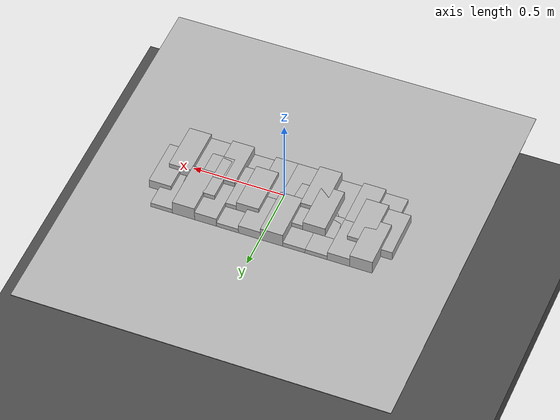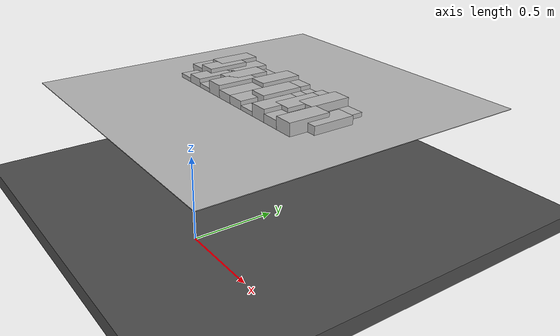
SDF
<sdf version="1.6">
 <world name="default">
  <model name="ground_plane">
   <static>1</static>
   <link name="link">
    <collision name="collision">
     <geometry><plane><normal>0 0 1</normal><size>100 100</size></plane></geometry>
     <surface><friction><ode><mu>100</mu><mu2>50</mu2></ode></friction></surface>
    </collision>
    <visual name="visual">
     <cast_shadows>0</cast_shadows>
     <geometry><plane><normal>0 0 1</normal><size>100 100</size></plane></geometry>
     <material>
      <script><uri>file://media/materials/scripts/gazebo.material</uri><name>Gazebo/Grey</name></script>
     </material>
    </visual>
   </link>
  </model>
  <model name="frc2016_roughterrain_0">
   <link name="link_clone_16">
    <pose>-0.12314 0.594437 -0.073164 0 -0 0</pose>
    <inertial>
     <inertia><ixx>nan</ixx><ixy>0</ixy><ixz>0</ixz><iyy>nan</iyy><iyz>0</iyz><izz>nan</izz></inertia>
     <mass>0</mass>
    </inertial>
    <visual name="row1_block10_lg">
     <pose>-0.51435 0.1143 0.12238 0 -0 0</pose>
     <geometry><box><size>0.115452 0.257474 0.0762</size></box></geometry>
     <material><shader type="pixel"/></material>
    </visual>
    <visual name="row1_block9_md">
     <pose>-0.40005 0.1143 0.10968 0 -0 0</pose>
     <geometry><box><size>0.115452 0.257474 0.0508</size></box></geometry>
     <material><shader type="pixel"/></material>
    </visual>
    <visual name="row2_block1_md">
     <pose>0.5715 0 0.10968 0 -0 0</pose>
     <geometry><box><size>0.115452 0.257474 0.0508</size></box></geometry>
     <material><shader type="pixel"/></material>
    </visual>
    <visual name="row1_block3_md">
     <pose>0.28575 0.1143 0.10968 0 -0 0</pose>
     <geometry><box><size>0.115452 0.257474 0.0508</size></box></geometry>
     <material><shader type="pixel"/></material>
    </visual>
    <visual name="row1_block6_lg">
     <pose>-0.05715 0.1143 0.12238 0 -0 0</pose>
     <geometry><box><size>0.115452 0.257474 0.0762</size></box></geometry>
     <material><shader type="pixel"/></material>
    </visual>
    <visual name="row1_block4_sm">
     <pose>0.17145 0.1143 0.09698 0 -0 0</pose>
     <geometry><box><size>0.115452 0.257474 0.0254</size></box></geometry>
     <material><shader type="pixel"/></material>
    </visual>
    <visual name="row1_block2_lg">
     <pose>0.40005 0.1143 0.12238 0 -0 0</pose>
     <geometry><box><size>0.115452 0.257474 0.0762</size></box></geometry>
     <material><shader type="pixel"/></material>
    </visual>
    <visual name="row1_block5_md">
     <pose>0.05715 0.1143 0.10968 0 -0 0</pose>
     <geometry><box><size>0.115452 0.257474 0.0508</size></box></geometry>
     <material><shader type="pixel"/></material>
    </visual>
    <visual name="platform">
     <pose>0 0 0.08269 0 -0 0</pose>
     <geometry><box><size>1.91826 2.01688 0.003175</size></box></geometry>
     <material><shader type="pixel"/></material>
    </visual>
    <visual name="row1_block1_sm">
     <pose>0.51435 0.1143 0.09698 0 -0 0</pose>
     <geometry><box><size>0.115452 0.257474 0.0254</size></box></geometry>
     <material><shader type="pixel"/></material>
    </visual>
    <visual name="row1_block7_sm">
     <pose>-0.17145 0.1143 0.09698 0 -0 0</pose>
     <geometry><box><size>0.115452 0.257474 0.0254</size></box></geometry>
     <material><shader type="pixel"/></material>
    </visual>
    <visual name="row1_block8_sm">
     <pose>-0.28575 0.1143 0.09698 0 -0 0</pose>
     <geometry><box><size>0.115452 0.257474 0.0254</size></box></geometry>
     <material><shader type="pixel"/></material>
    </visual>
    <visual name="row2_block2_sm">
     <pose>0.4572 0 0.09698 0 -0 0</pose>
     <geometry><box><size>0.115452 0.257474 0.0254</size></box></geometry>
     <material><shader type="pixel"/></material>
    </visual>
    <visual name="row2_block3_lg">
     <pose>0.3429 0 0.12238 0 -0 0</pose>
     <geometry><box><size>0.115452 0.257474 0.0762</size></box></geometry>
     <material><shader type="pixel"/></material>
    </visual>
    <visual name="row2_block4_md">
     <pose>0.2286 0 0.10968 0 -0 0</pose>
     <geometry><box><size>0.115452 0.257474 0.0508</size></box></geometry>
     <material><shader type="pixel"/></material>
    </visual>
    <visual name="row2_block5_lg">
     <pose>0.1143 0 0.12238 0 -0 0</pose>
     <geometry><box><size>0.115452 0.257474 0.0762</size></box></geometry>
     <material><shader type="pixel"/></material>
    </visual>
    <visual name="row2_block6_sm">
     <pose>0 0 0.09698 0 -0 0</pose>
     <geometry><box><size>0.115452 0.257474 0.0254</size></box></geometry>
     <material><shader type="pixel"/></material>
    </visual>
    <visual name="row2_block7_md">
     <pose>-0.1143 0 0.10968 0 -0 0</pose>
     <geometry><box><size>0.115452 0.257474 0.0508</size></box></geometry>
     <material><shader type="pixel"/></material>
    </visual>
    <visual name="row2_block8_lg">
     <pose>-0.2286 0 0.12238 0 -0 0</pose>
     <geometry><box><size>0.115452 0.257474 0.0762</size></box></geometry>
     <material><shader type="pixel"/></material>
    </visual>
    <visual name="row2_block9_sm">
     <pose>-0.3429 0 0.09698 0 -0 0</pose>
     <geometry><box><size>0.115452 0.257474 0.0254</size></box></geometry>
     <material><shader type="pixel"/></material>
    </visual>
    <visual name="row2_block10_lg">
     <pose>-0.4572 0 0.12238 0 -0 0</pose>
     <geometry><box><size>0.115452 0.257474 0.0762</size></box></geometry>
     <material><shader type="pixel"/></material>
    </visual>
    <visual name="row2_block11_md">
     <pose>-0.5715 0 0.10968 0 -0 0</pose>
     <geometry><box><size>0.115452 0.257474 0.0508</size></box></geometry>
     <material><shader type="pixel"/></material>
    </visual>
    <visual name="row3_block2_md">
     <pose>0.40005 -0.1143 0.10968 0 -0 0</pose>
     <geometry><box><size>0.115452 0.257474 0.0508</size></box></geometry>
     <material><shader type="pixel"/></material>
    </visual>
    <visual name="row3_block1_lg">
     <pose>0.51435 -0.1143 0.12238 0 -0 0</pose>
     <geometry><box><size>0.115452 0.257474 0.0762</size></box></geometry>
     <material><shader type="pixel"/></material>
    </visual>
    <visual name="row3_block3_lg">
     <pose>0.28575 -0.1143 0.12238 0 -0 0</pose>
     <geometry><box><size>0.115452 0.257474 0.0762</size></box></geometry>
     <material><shader type="pixel"/></material>
    </visual>
    <visual name="row3_block4_sm">
     <pose>0.17145 -0.1143 0.09698 0 -0 0</pose>
     <geometry><box><size>0.115452 0.257474 0.0254</size></box></geometry>
     <material><shader type="pixel"/></material>
    </visual>
    <visual name="row3_block5_md">
     <pose>0.05715 -0.1143 0.10968 0 -0 0</pose>
     <geometry><box><size>0.115452 0.257474 0.0508</size></box></geometry>
     <material><shader type="pixel"/></material>
    </visual>
    <visual name="row3_block6_md">
     <pose>-0.05715 -0.1143 0.10968 0 -0 0</pose>
     <geometry><box><size>0.115452 0.257474 0.0508</size></box></geometry>
     <material><shader type="pixel"/></material>
    </visual>
    <visual name="row3_block8_sm">
     <pose>-0.28575 -0.1143 0.09698 0 -0 0</pose>
     <geometry><box><size>0.115452 0.257474 0.0254</size></box></geometry>
     <material><shader type="pixel"/></material>
    </visual>
    <visual name="row3_block7_lg">
     <pose>-0.17145 -0.1143 0.12238 0 -0 0</pose>
     <geometry><box><size>0.115452 0.257474 0.0762</size></box></geometry>
     <material><shader type="pixel"/></material>
    </visual>
    <visual name="row3_block9_md">
     <pose>-0.40005 -0.1143 0.10968 0 -0 0</pose>
     <geometry><box><size>0.115452 0.257474 0.0508</size></box></geometry>
     <material><shader type="pixel"/></material>
    </visual>
    <visual name="row3_block10_sm">
     <pose>-0.51435 -0.1143 0.09698 0 -0 0</pose>
     <geometry><box><size>0.115452 0.257474 0.0254</size></box></geometry>
     <material><shader type="pixel"/></material>
    </visual>
    <collision name="row2_block5_lg_0">
     <pose>0.1143 0 0.12238 0 -0 0</pose>
     <geometry><box><size>0.115452 0.257474 0.0762</size></box></geometry>
     <surface>
      <friction>
       <ode><mu>1</mu><mu2>1</mu2><fdir1>0 0 0</fdir1><slip1>0</slip1><slip2>0</slip2></ode>
       <torsional>
        <coefficient>1</coefficient>
        <patch_radius>0</patch_radius>
        <surface_radius>0</surface_radius>
        <use_patch_radius>1</use_patch_radius>
        <ode><slip>0</slip></ode>
       </torsional>
      </friction>
      <bounce><restitution_coefficient>0</restitution_coefficient><threshold>1e+06</threshold></bounce>
      <contact>
       <collide_without_contact>0</collide_without_contact>
       <collide_without_contact_bitmask>1</collide_without_contact_bitmask>
       <collide_bitmask>1</collide_bitmask>
       <ode>
        <soft_cfm>0</soft_cfm>
        <soft_erp>0.2</soft_erp>
        <kp>1e+13</kp>
        <kd>1</kd>
        <max_vel>0.01</max_vel>
        <min_depth>0</min_depth>
       </ode>
       <bullet>
        <split_impulse>1</split_impulse>
        <split_impulse_penetration_threshold>-0.01</split_impulse_penetration_threshold>
        <soft_cfm>0</soft_cfm>
        <soft_erp>0.2</soft_erp>
        <kp>1e+13</kp>
        <kd>1</kd>
       </bullet>
      </contact>
     </surface>
    </collision>
    <collision name="platform_0">
     <pose>0 0 0.08269 0 -0 0</pose>
     <geometry><box><size>1.91826 2.01688 0.003175</size></box></geometry>
     <surface>
      <friction>
       <ode><mu>1</mu><mu2>1</mu2><fdir1>0 0 0</fdir1><slip1>0</slip1><slip2>0</slip2></ode>
       <torsional>
        <coefficient>1</coefficient>
        <patch_radius>0</patch_radius>
        <surface_radius>0</surface_radius>
        <use_patch_radius>1</use_patch_radius>
        <ode><slip>0</slip></ode>
       </torsional>
      </friction>
      <bounce><restitution_coefficient>0</restitution_coefficient><threshold>1e+06</threshold></bounce>
      <contact>
       <collide_without_contact>0</collide_without_contact>
       <collide_without_contact_bitmask>1</collide_without_contact_bitmask>
       <collide_bitmask>1</collide_bitmask>
       <ode>
        <soft_cfm>0</soft_cfm>
        <soft_erp>0.2</soft_erp>
        <kp>1e+13</kp>
        <kd>1</kd>
        <max_vel>0.01</max_vel>
        <min_depth>0</min_depth>
       </ode>
       <bullet>
        <split_impulse>1</split_impulse>
        <split_impulse_penetration_threshold>-0.01</split_impulse_penetration_threshold>
        <soft_cfm>0</soft_cfm>
        <soft_erp>0.2</soft_erp>
        <kp>1e+13</kp>
        <kd>1</kd>
       </bullet>
      </contact>
     </surface>
    </collision>
    <collision name="row1_block1_sm_0">
     <pose>0.51435 0.1143 0.09698 0 -0 0</pose>
     <geometry><box><size>0.115452 0.257474 0.0254</size></box></geometry>
     <surface>
      <friction>
       <ode><mu>1</mu><mu2>1</mu2><fdir1>0 0 0</fdir1><slip1>0</slip1><slip2>0</slip2></ode>
       <torsional>
        <coefficient>1</coefficient>
        <patch_radius>0</patch_radius>
        <surface_radius>0</surface_radius>
        <use_patch_radius>1</use_patch_radius>
        <ode><slip>0</slip></ode>
       </torsional>
      </friction>
      <bounce><restitution_coefficient>0</restitution_coefficient><threshold>1e+06</threshold></bounce>
      <contact>
       <collide_without_contact>0</collide_without_contact>
       <collide_without_contact_bitmask>1</collide_without_contact_bitmask>
       <collide_bitmask>1</collide_bitmask>
       <ode>
        <soft_cfm>0</soft_cfm>
        <soft_erp>0.2</soft_erp>
        <kp>1e+13</kp>
        <kd>1</kd>
        <max_vel>0.01</max_vel>
        <min_depth>0</min_depth>
       </ode>
       <bullet>
        <split_impulse>1</split_impulse>
        <split_impulse_penetration_threshold>-0.01</split_impulse_penetration_threshold>
        <soft_cfm>0</soft_cfm>
        <soft_erp>0.2</soft_erp>
        <kp>1e+13</kp>
        <kd>1</kd>
       </bullet>
      </contact>
     </surface>
    </collision>
    <collision name="row1_block3_md_0">
     <pose>0.28575 0.1143 0.10968 0 -0 0</pose>
     <geometry><box><size>0.115452 0.257474 0.0508</size></box></geometry>
     <surface>
      <friction>
       <ode><mu>1</mu><mu2>1</mu2><fdir1>0 0 0</fdir1><slip1>0</slip1><slip2>0</slip2></ode>
       <torsional>
        <coefficient>1</coefficient>
        <patch_radius>0</patch_radius>
        <surface_radius>0</surface_radius>
        <use_patch_radius>1</use_patch_radius>
        <ode><slip>0</slip></ode>
       </torsional>
      </friction>
      <bounce><restitution_coefficient>0</restitution_coefficient><threshold>1e+06</threshold></bounce>
      <contact>
       <collide_without_contact>0</collide_without_contact>
       <collide_without_contact_bitmask>1</collide_without_contact_bitmask>
       <collide_bitmask>1</collide_bitmask>
       <ode>
        <soft_cfm>0</soft_cfm>
        <soft_erp>0.2</soft_erp>
        <kp>1e+13</kp>
        <kd>1</kd>
        <max_vel>0.01</max_vel>
        <min_depth>0</min_depth>
       </ode>
       <bullet>
        <split_impulse>1</split_impulse>
        <split_impulse_penetration_threshold>-0.01</split_impulse_penetration_threshold>
        <soft_cfm>0</soft_cfm>
        <soft_erp>0.2</soft_erp>
        <kp>1e+13</kp>
        <kd>1</kd>
       </bullet>
      </contact>
     </surface>
    </collision>
    <collision name="row1_block2_lg_0">
     <pose>0.40005 0.1143 0.12238 0 -0 0</pose>
     <geometry><box><size>0.115452 0.257474 0.0762</size></box></geometry>
     <surface>
      <friction>
       <ode><mu>1</mu><mu2>1</mu2><fdir1>0 0 0</fdir1><slip1>0</slip1><slip2>0</slip2></ode>
       <torsional>
        <coefficient>1</coefficient>
        <patch_radius>0</patch_radius>
        <surface_radius>0</surface_radius>
        <use_patch_radius>1</use_patch_radius>
        <ode><slip>0</slip></ode>
       </torsional>
      </friction>
      <bounce><restitution_coefficient>0</restitution_coefficient><threshold>1e+06</threshold></bounce>
      <contact>
       <collide_without_contact>0</collide_without_contact>
       <collide_without_contact_bitmask>1</collide_without_contact_bitmask>
       <collide_bitmask>1</collide_bitmask>
       <ode>
        <soft_cfm>0</soft_cfm>
        <soft_erp>0.2</soft_erp>
        <kp>1e+13</kp>
        <kd>1</kd>
        <max_vel>0.01</max_vel>
        <min_depth>0</min_depth>
       </ode>
       <bullet>
        <split_impulse>1</split_impulse>
        <split_impulse_penetration_threshold>-0.01</split_impulse_penetration_threshold>
        <soft_cfm>0</soft_cfm>
        <soft_erp>0.2</soft_erp>
        <kp>1e+13</kp>
        <kd>1</kd>
       </bullet>
      </contact>
     </surface>
    </collision>
    <collision name="row1_block4_sm_0">
     <pose>0.17145 0.1143 0.09698 0 -0 0</pose>
     <geometry><box><size>0.115452 0.257474 0.0254</size></box></geometry>
     <surface>
      <friction>
       <ode><mu>1</mu><mu2>1</mu2><fdir1>0 0 0</fdir1><slip1>0</slip1><slip2>0</slip2></ode>
       <torsional>
        <coefficient>1</coefficient>
        <patch_radius>0</patch_radius>
        <surface_radius>0</surface_radius>
        <use_patch_radius>1</use_patch_radius>
        <ode><slip>0</slip></ode>
       </torsional>
      </friction>
      <bounce><restitution_coefficient>0</restitution_coefficient><threshold>1e+06</threshold></bounce>
      <contact>
       <collide_without_contact>0</collide_without_contact>
       <collide_without_contact_bitmask>1</collide_without_contact_bitmask>
       <collide_bitmask>1</collide_bitmask>
       <ode>
        <soft_cfm>0</soft_cfm>
        <soft_erp>0.2</soft_erp>
        <kp>1e+13</kp>
        <kd>1</kd>
        <max_vel>0.01</max_vel>
        <min_depth>0</min_depth>
       </ode>
       <bullet>
        <split_impulse>1</split_impulse>
        <split_impulse_penetration_threshold>-0.01</split_impulse_penetration_threshold>
        <soft_cfm>0</soft_cfm>
        <soft_erp>0.2</soft_erp>
        <kp>1e+13</kp>
        <kd>1</kd>
       </bullet>
      </contact>
     </surface>
    </collision>
    <collision name="row1_block6_lg_0">
     <pose>-0.05715 0.1143 0.12238 0 -0 0</pose>
     <geometry><box><size>0.115452 0.257474 0.0762</size></box></geometry>
     <surface>
      <friction>
       <ode><mu>1</mu><mu2>1</mu2><fdir1>0 0 0</fdir1><slip1>0</slip1><slip2>0</slip2></ode>
       <torsional>
        <coefficient>1</coefficient>
        <patch_radius>0</patch_radius>
        <surface_radius>0</surface_radius>
        <use_patch_radius>1</use_patch_radius>
        <ode><slip>0</slip></ode>
       </torsional>
      </friction>
      <bounce><restitution_coefficient>0</restitution_coefficient><threshold>1e+06</threshold></bounce>
      <contact>
       <collide_without_contact>0</collide_without_contact>
       <collide_without_contact_bitmask>1</collide_without_contact_bitmask>
       <collide_bitmask>1</collide_bitmask>
       <ode>
        <soft_cfm>0</soft_cfm>
        <soft_erp>0.2</soft_erp>
        <kp>1e+13</kp>
        <kd>1</kd>
        <max_vel>0.01</max_vel>
        <min_depth>0</min_depth>
       </ode>
       <bullet>
        <split_impulse>1</split_impulse>
        <split_impulse_penetration_threshold>-0.01</split_impulse_penetration_threshold>
        <soft_cfm>0</soft_cfm>
        <soft_erp>0.2</soft_erp>
        <kp>1e+13</kp>
        <kd>1</kd>
       </bullet>
      </contact>
     </surface>
    </collision>
    <collision name="row1_block5_md_0">
     <pose>0.05715 0.1143 0.10968 0 -0 0</pose>
     <geometry><box><size>0.115452 0.257474 0.0508</size></box></geometry>
     <surface>
      <friction>
       <ode><mu>1</mu><mu2>1</mu2><fdir1>0 0 0</fdir1><slip1>0</slip1><slip2>0</slip2></ode>
       <torsional>
        <coefficient>1</coefficient>
        <patch_radius>0</patch_radius>
        <surface_radius>0</surface_radius>
        <use_patch_radius>1</use_patch_radius>
        <ode><slip>0</slip></ode>
       </torsional>
      </friction>
      <bounce><restitution_coefficient>0</restitution_coefficient><threshold>1e+06</threshold></bounce>
      <contact>
       <collide_without_contact>0</collide_without_contact>
       <collide_without_contact_bitmask>1</collide_without_contact_bitmask>
       <collide_bitmask>1</collide_bitmask>
       <ode>
        <soft_cfm>0</soft_cfm>
        <soft_erp>0.2</soft_erp>
        <kp>1e+13</kp>
        <kd>1</kd>
        <max_vel>0.01</max_vel>
        <min_depth>0</min_depth>
       </ode>
       <bullet>
        <split_impulse>1</split_impulse>
        <split_impulse_penetration_threshold>-0.01</split_impulse_penetration_threshold>
        <soft_cfm>0</soft_cfm>
        <soft_erp>0.2</soft_erp>
        <kp>1e+13</kp>
        <kd>1</kd>
       </bullet>
      </contact>
     </surface>
    </collision>
    <collision name="row1_block7_sm_0">
     <pose>-0.17145 0.1143 0.09698 0 -0 0</pose>
     <geometry><box><size>0.115452 0.257474 0.0254</size></box></geometry>
     <surface>
      <friction>
       <ode><mu>1</mu><mu2>1</mu2><fdir1>0 0 0</fdir1><slip1>0</slip1><slip2>0</slip2></ode>
       <torsional>
        <coefficient>1</coefficient>
        <patch_radius>0</patch_radius>
        <surface_radius>0</surface_radius>
        <use_patch_radius>1</use_patch_radius>
        <ode><slip>0</slip></ode>
       </torsional>
      </friction>
      <bounce><restitution_coefficient>0</restitution_coefficient><threshold>1e+06</threshold></bounce>
      <contact>
       <collide_without_contact>0</collide_without_contact>
       <collide_without_contact_bitmask>1</collide_without_contact_bitmask>
       <collide_bitmask>1</collide_bitmask>
       <ode>
        <soft_cfm>0</soft_cfm>
        <soft_erp>0.2</soft_erp>
        <kp>1e+13</kp>
        <kd>1</kd>
        <max_vel>0.01</max_vel>
        <min_depth>0</min_depth>
       </ode>
       <bullet>
        <split_impulse>1</split_impulse>
        <split_impulse_penetration_threshold>-0.01</split_impulse_penetration_threshold>
        <soft_cfm>0</soft_cfm>
        <soft_erp>0.2</soft_erp>
        <kp>1e+13</kp>
        <kd>1</kd>
       </bullet>
      </contact>
     </surface>
    </collision>
    <collision name="row1_block10_lg_0">
     <pose>-0.51435 0.1143 0.12238 0 -0 0</pose>
     <geometry><box><size>0.115452 0.257474 0.0762</size></box></geometry>
     <surface>
      <friction>
       <ode><mu>1</mu><mu2>1</mu2><fdir1>0 0 0</fdir1><slip1>0</slip1><slip2>0</slip2></ode>
       <torsional>
        <coefficient>1</coefficient>
        <patch_radius>0</patch_radius>
        <surface_radius>0</surface_radius>
        <use_patch_radius>1</use_patch_radius>
        <ode><slip>0</slip></ode>
       </torsional>
      </friction>
      <bounce><restitution_coefficient>0</restitution_coefficient><threshold>1e+06</threshold></bounce>
      <contact>
       <collide_without_contact>0</collide_without_contact>
       <collide_without_contact_bitmask>1</collide_without_contact_bitmask>
       <collide_bitmask>1</collide_bitmask>
       <ode>
        <soft_cfm>0</soft_cfm>
        <soft_erp>0.2</soft_erp>
        <kp>1e+13</kp>
        <kd>1</kd>
        <max_vel>0.01</max_vel>
        <min_depth>0</min_depth>
       </ode>
       <bullet>
        <split_impulse>1</split_impulse>
        <split_impulse_penetration_threshold>-0.01</split_impulse_penetration_threshold>
        <soft_cfm>0</soft_cfm>
        <soft_erp>0.2</soft_erp>
        <kp>1e+13</kp>
        <kd>1</kd>
       </bullet>
      </contact>
     </surface>
    </collision>
    <collision name="row1_block9_md_0">
     <pose>-0.40005 0.1143 0.10968 0 -0 0</pose>
     <geometry><box><size>0.115452 0.257474 0.0508</size></box></geometry>
     <surface>
      <friction>
       <ode><mu>1</mu><mu2>1</mu2><fdir1>0 0 0</fdir1><slip1>0</slip1><slip2>0</slip2></ode>
       <torsional>
        <coefficient>1</coefficient>
        <patch_radius>0</patch_radius>
        <surface_radius>0</surface_radius>
        <use_patch_radius>1</use_patch_radius>
        <ode><slip>0</slip></ode>
       </torsional>
      </friction>
      <bounce><restitution_coefficient>0</restitution_coefficient><threshold>1e+06</threshold></bounce>
      <contact>
       <collide_without_contact>0</collide_without_contact>
       <collide_without_contact_bitmask>1</collide_without_contact_bitmask>
       <collide_bitmask>1</collide_bitmask>
       <ode>
        <soft_cfm>0</soft_cfm>
        <soft_erp>0.2</soft_erp>
        <kp>1e+13</kp>
        <kd>1</kd>
        <max_vel>0.01</max_vel>
        <min_depth>0</min_depth>
       </ode>
       <bullet>
        <split_impulse>1</split_impulse>
        <split_impulse_penetration_threshold>-0.01</split_impulse_penetration_threshold>
        <soft_cfm>0</soft_cfm>
        <soft_erp>0.2</soft_erp>
        <kp>1e+13</kp>
        <kd>1</kd>
       </bullet>
      </contact>
     </surface>
    </collision>
    <collision name="row1_block8_sm_0">
     <pose>-0.28575 0.1143 0.09698 0 -0 0</pose>
     <geometry><box><size>0.115452 0.257474 0.0254</size></box></geometry>
     <surface>
      <friction>
       <ode><mu>1</mu><mu2>1</mu2><fdir1>0 0 0</fdir1><slip1>0</slip1><slip2>0</slip2></ode>
       <torsional>
        <coefficient>1</coefficient>
        <patch_radius>0</patch_radius>
        <surface_radius>0</surface_radius>
        <use_patch_radius>1</use_patch_radius>
        <ode><slip>0</slip></ode>
       </torsional>
      </friction>
      <bounce><restitution_coefficient>0</restitution_coefficient><threshold>1e+06</threshold></bounce>
      <contact>
       <collide_without_contact>0</collide_without_contact>
       <collide_without_contact_bitmask>1</collide_without_contact_bitmask>
       <collide_bitmask>1</collide_bitmask>
       <ode>
        <soft_cfm>0</soft_cfm>
        <soft_erp>0.2</soft_erp>
        <kp>1e+13</kp>
        <kd>1</kd>
        <max_vel>0.01</max_vel>
        <min_depth>0</min_depth>
       </ode>
       <bullet>
        <split_impulse>1</split_impulse>
        <split_impulse_penetration_threshold>-0.01</split_impulse_penetration_threshold>
        <soft_cfm>0</soft_cfm>
        <soft_erp>0.2</soft_erp>
        <kp>1e+13</kp>
        <kd>1</kd>
       </bullet>
      </contact>
     </surface>
    </collision>
    <collision name="row2_block1_md_0">
     <pose>0.5715 0 0.10968 0 -0 0</pose>
     <geometry><box><size>0.115452 0.257474 0.0508</size></box></geometry>
     <surface>
      <friction>
       <ode><mu>1</mu><mu2>1</mu2><fdir1>0 0 0</fdir1><slip1>0</slip1><slip2>0</slip2></ode>
       <torsional>
        <coefficient>1</coefficient>
        <patch_radius>0</patch_radius>
        <surface_radius>0</surface_radius>
        <use_patch_radius>1</use_patch_radius>
        <ode><slip>0</slip></ode>
       </torsional>
      </friction>
      <bounce><restitution_coefficient>0</restitution_coefficient><threshold>1e+06</threshold></bounce>
      <contact>
       <collide_without_contact>0</collide_without_contact>
       <collide_without_contact_bitmask>1</collide_without_contact_bitmask>
       <collide_bitmask>1</collide_bitmask>
       <ode>
        <soft_cfm>0</soft_cfm>
        <soft_erp>0.2</soft_erp>
        <kp>1e+13</kp>
        <kd>1</kd>
        <max_vel>0.01</max_vel>
        <min_depth>0</min_depth>
       </ode>
       <bullet>
        <split_impulse>1</split_impulse>
        <split_impulse_penetration_threshold>-0.01</split_impulse_penetration_threshold>
        <soft_cfm>0</soft_cfm>
        <soft_erp>0.2</soft_erp>
        <kp>1e+13</kp>
        <kd>1</kd>
       </bullet>
      </contact>
     </surface>
    </collision>
    <collision name="row2_block2_sm_0">
     <pose>0.4572 0 0.09698 0 -0 0</pose>
     <geometry><box><size>0.115452 0.257474 0.0254</size></box></geometry>
     <surface>
      <friction>
       <ode><mu>1</mu><mu2>1</mu2><fdir1>0 0 0</fdir1><slip1>0</slip1><slip2>0</slip2></ode>
       <torsional>
        <coefficient>1</coefficient>
        <patch_radius>0</patch_radius>
        <surface_radius>0</surface_radius>
        <use_patch_radius>1</use_patch_radius>
        <ode><slip>0</slip></ode>
       </torsional>
      </friction>
      <bounce><restitution_coefficient>0</restitution_coefficient><threshold>1e+06</threshold></bounce>
      <contact>
       <collide_without_contact>0</collide_without_contact>
       <collide_without_contact_bitmask>1</collide_without_contact_bitmask>
       <collide_bitmask>1</collide_bitmask>
       <ode>
        <soft_cfm>0</soft_cfm>
        <soft_erp>0.2</soft_erp>
        <kp>1e+13</kp>
        <kd>1</kd>
        <max_vel>0.01</max_vel>
        <min_depth>0</min_depth>
       </ode>
       <bullet>
        <split_impulse>1</split_impulse>
        <split_impulse_penetration_threshold>-0.01</split_impulse_penetration_threshold>
        <soft_cfm>0</soft_cfm>
        <soft_erp>0.2</soft_erp>
        <kp>1e+13</kp>
        <kd>1</kd>
       </bullet>
      </contact>
     </surface>
    </collision>
    <collision name="row2_block4_md_0">
     <pose>0.2286 0 0.10968 0 -0 0</pose>
     <geometry><box><size>0.115452 0.257474 0.0508</size></box></geometry>
     <surface>
      <friction>
       <ode><mu>1</mu><mu2>1</mu2><fdir1>0 0 0</fdir1><slip1>0</slip1><slip2>0</slip2></ode>
       <torsional>
        <coefficient>1</coefficient>
        <patch_radius>0</patch_radius>
        <surface_radius>0</surface_radius>
        <use_patch_radius>1</use_patch_radius>
        <ode><slip>0</slip></ode>
       </torsional>
      </friction>
      <bounce><restitution_coefficient>0</restitution_coefficient><threshold>1e+06</threshold></bounce>
      <contact>
       <collide_without_contact>0</collide_without_contact>
       <collide_without_contact_bitmask>1</collide_without_contact_bitmask>
       <collide_bitmask>1</collide_bitmask>
       <ode>
        <soft_cfm>0</soft_cfm>
        <soft_erp>0.2</soft_erp>
        <kp>1e+13</kp>
        <kd>1</kd>
        <max_vel>0.01</max_vel>
        <min_depth>0</min_depth>
       </ode>
       <bullet>
        <split_impulse>1</split_impulse>
        <split_impulse_penetration_threshold>-0.01</split_impulse_penetration_threshold>
        <soft_cfm>0</soft_cfm>
        <soft_erp>0.2</soft_erp>
        <kp>1e+13</kp>
        <kd>1</kd>
       </bullet>
      </contact>
     </surface>
    </collision>
    <collision name="row2_block3_lg_0">
     <pose>0.3429 0 0.12238 0 -0 0</pose>
     <geometry><box><size>0.115452 0.257474 0.0762</size></box></geometry>
     <surface>
      <friction>
       <ode><mu>1</mu><mu2>1</mu2><fdir1>0 0 0</fdir1><slip1>0</slip1><slip2>0</slip2></ode>
       <torsional>
        <coefficient>1</coefficient>
        <patch_radius>0</patch_radius>
        <surface_radius>0</surface_radius>
        <use_patch_radius>1</use_patch_radius>
        <ode><slip>0</slip></ode>
       </torsional>
      </friction>
      <bounce><restitution_coefficient>0</restitution_coefficient><threshold>1e+06</threshold></bounce>
      <contact>
       <collide_without_contact>0</collide_without_contact>
       <collide_without_contact_bitmask>1</collide_without_contact_bitmask>
       <collide_bitmask>1</collide_bitmask>
       <ode>
        <soft_cfm>0</soft_cfm>
        <soft_erp>0.2</soft_erp>
        <kp>1e+13</kp>
        <kd>1</kd>
        <max_vel>0.01</max_vel>
        <min_depth>0</min_depth>
       </ode>
       <bullet>
        <split_impulse>1</split_impulse>
        <split_impulse_penetration_threshold>-0.01</split_impulse_penetration_threshold>
        <soft_cfm>0</soft_cfm>
        <soft_erp>0.2</soft_erp>
        <kp>1e+13</kp>
        <kd>1</kd>
       </bullet>
      </contact>
     </surface>
    </collision>
    <collision name="row2_block6_sm_0">
     <pose>0 0 0.09698 0 -0 0</pose>
     <geometry><box><size>0.115452 0.257474 0.0254</size></box></geometry>
     <surface>
      <friction>
       <ode><mu>1</mu><mu2>1</mu2><fdir1>0 0 0</fdir1><slip1>0</slip1><slip2>0</slip2></ode>
       <torsional>
        <coefficient>1</coefficient>
        <patch_radius>0</patch_radius>
        <surface_radius>0</surface_radius>
        <use_patch_radius>1</use_patch_radius>
        <ode><slip>0</slip></ode>
       </torsional>
      </friction>
      <bounce><restitution_coefficient>0</restitution_coefficient><threshold>1e+06</threshold></bounce>
      <contact>
       <collide_without_contact>0</collide_without_contact>
       <collide_without_contact_bitmask>1</collide_without_contact_bitmask>
       <collide_bitmask>1</collide_bitmask>
       <ode>
        <soft_cfm>0</soft_cfm>
        <soft_erp>0.2</soft_erp>
        <kp>1e+13</kp>
        <kd>1</kd>
        <max_vel>0.01</max_vel>
        <min_depth>0</min_depth>
       </ode>
       <bullet>
        <split_impulse>1</split_impulse>
        <split_impulse_penetration_threshold>-0.01</split_impulse_penetration_threshold>
        <soft_cfm>0</soft_cfm>
        <soft_erp>0.2</soft_erp>
        <kp>1e+13</kp>
        <kd>1</kd>
       </bullet>
      </contact>
     </surface>
    </collision>
    <collision name="row2_block8_lg_0">
     <pose>-0.2286 0 0.12238 0 -0 0</pose>
     <geometry><box><size>0.115452 0.257474 0.0762</size></box></geometry>
     <surface>
      <friction>
       <ode><mu>1</mu><mu2>1</mu2><fdir1>0 0 0</fdir1><slip1>0</slip1><slip2>0</slip2></ode>
       <torsional>
        <coefficient>1</coefficient>
        <patch_radius>0</patch_radius>
        <surface_radius>0</surface_radius>
        <use_patch_radius>1</use_patch_radius>
        <ode><slip>0</slip></ode>
       </torsional>
      </friction>
      <bounce><restitution_coefficient>0</restitution_coefficient><threshold>1e+06</threshold></bounce>
      <contact>
       <collide_without_contact>0</collide_without_contact>
       <collide_without_contact_bitmask>1</collide_without_contact_bitmask>
       <collide_bitmask>1</collide_bitmask>
       <ode>
        <soft_cfm>0</soft_cfm>
        <soft_erp>0.2</soft_erp>
        <kp>1e+13</kp>
        <kd>1</kd>
        <max_vel>0.01</max_vel>
        <min_depth>0</min_depth>
       </ode>
       <bullet>
        <split_impulse>1</split_impulse>
        <split_impulse_penetration_threshold>-0.01</split_impulse_penetration_threshold>
        <soft_cfm>0</soft_cfm>
        <soft_erp>0.2</soft_erp>
        <kp>1e+13</kp>
        <kd>1</kd>
       </bullet>
      </contact>
     </surface>
    </collision>
    <collision name="row2_block10_lg_0">
     <pose>-0.4572 0 0.12238 0 -0 0</pose>
     <geometry><box><size>0.115452 0.257474 0.0762</size></box></geometry>
     <surface>
      <friction>
       <ode><mu>1</mu><mu2>1</mu2><fdir1>0 0 0</fdir1><slip1>0</slip1><slip2>0</slip2></ode>
       <torsional>
        <coefficient>1</coefficient>
        <patch_radius>0</patch_radius>
        <surface_radius>0</surface_radius>
        <use_patch_radius>1</use_patch_radius>
        <ode><slip>0</slip></ode>
       </torsional>
      </friction>
      <bounce><restitution_coefficient>0</restitution_coefficient><threshold>1e+06</threshold></bounce>
      <contact>
       <collide_without_contact>0</collide_without_contact>
       <collide_without_contact_bitmask>1</collide_without_contact_bitmask>
       <collide_bitmask>1</collide_bitmask>
       <ode>
        <soft_cfm>0</soft_cfm>
        <soft_erp>0.2</soft_erp>
        <kp>1e+13</kp>
        <kd>1</kd>
        <max_vel>0.01</max_vel>
        <min_depth>0</min_depth>
       </ode>
       <bullet>
        <split_impulse>1</split_impulse>
        <split_impulse_penetration_threshold>-0.01</split_impulse_penetration_threshold>
        <soft_cfm>0</soft_cfm>
        <soft_erp>0.2</soft_erp>
        <kp>1e+13</kp>
        <kd>1</kd>
       </bullet>
      </contact>
     </surface>
    </collision>
    <collision name="row2_block7_md_0">
     <pose>-0.1143 0 0.10968 0 -0 0</pose>
     <geometry><box><size>0.115452 0.257474 0.0508</size></box></geometry>
     <surface>
      <friction>
       <ode><mu>1</mu><mu2>1</mu2><fdir1>0 0 0</fdir1><slip1>0</slip1><slip2>0</slip2></ode>
       <torsional>
        <coefficient>1</coefficient>
        <patch_radius>0</patch_radius>
        <surface_radius>0</surface_radius>
        <use_patch_radius>1</use_patch_radius>
        <ode><slip>0</slip></ode>
       </torsional>
      </friction>
      <bounce><restitution_coefficient>0</restitution_coefficient><threshold>1e+06</threshold></bounce>
      <contact>
       <collide_without_contact>0</collide_without_contact>
       <collide_without_contact_bitmask>1</collide_without_contact_bitmask>
       <collide_bitmask>1</collide_bitmask>
       <ode>
        <soft_cfm>0</soft_cfm>
        <soft_erp>0.2</soft_erp>
        <kp>1e+13</kp>
        <kd>1</kd>
        <max_vel>0.01</max_vel>
        <min_depth>0</min_depth>
       </ode>
       <bullet>
        <split_impulse>1</split_impulse>
        <split_impulse_penetration_threshold>-0.01</split_impulse_penetration_threshold>
        <soft_cfm>0</soft_cfm>
        <soft_erp>0.2</soft_erp>
        <kp>1e+13</kp>
        <kd>1</kd>
       </bullet>
      </contact>
     </surface>
    </collision>
    <collision name="row2_block11_md_0">
     <pose>-0.5715 0 0.10968 0 -0 0</pose>
     <geometry><box><size>0.115452 0.257474 0.0508</size></box></geometry>
     <surface>
      <friction>
       <ode><mu>1</mu><mu2>1</mu2><fdir1>0 0 0</fdir1><slip1>0</slip1><slip2>0</slip2></ode>
       <torsional>
        <coefficient>1</coefficient>
        <patch_radius>0</patch_radius>
        <surface_radius>0</surface_radius>
        <use_patch_radius>1</use_patch_radius>
        <ode><slip>0</slip></ode>
       </torsional>
      </friction>
      <bounce><restitution_coefficient>0</restitution_coefficient><threshold>1e+06</threshold></bounce>
      <contact>
       <collide_without_contact>0</collide_without_contact>
       <collide_without_contact_bitmask>1</collide_without_contact_bitmask>
       <collide_bitmask>1</collide_bitmask>
       <ode>
        <soft_cfm>0</soft_cfm>
        <soft_erp>0.2</soft_erp>
        <kp>1e+13</kp>
        <kd>1</kd>
        <max_vel>0.01</max_vel>
        <min_depth>0</min_depth>
       </ode>
       <bullet>
        <split_impulse>1</split_impulse>
        <split_impulse_penetration_threshold>-0.01</split_impulse_penetration_threshold>
        <soft_cfm>0</soft_cfm>
        <soft_erp>0.2</soft_erp>
        <kp>1e+13</kp>
        <kd>1</kd>
       </bullet>
      </contact>
     </surface>
    </collision>
    <collision name="row2_block9_sm_0">
     <pose>-0.3429 0 0.09698 0 -0 0</pose>
     <geometry><box><size>0.115452 0.257474 0.0254</size></box></geometry>
     <surface>
      <friction>
       <ode><mu>1</mu><mu2>1</mu2><fdir1>0 0 0</fdir1><slip1>0</slip1><slip2>0</slip2></ode>
       <torsional>
        <coefficient>1</coefficient>
        <patch_radius>0</patch_radius>
        <surface_radius>0</surface_radius>
        <use_patch_radius>1</use_patch_radius>
        <ode><slip>0</slip></ode>
       </torsional>
      </friction>
      <bounce><restitution_coefficient>0</restitution_coefficient><threshold>1e+06</threshold></bounce>
      <contact>
       <collide_without_contact>0</collide_without_contact>
       <collide_without_contact_bitmask>1</collide_without_contact_bitmask>
       <collide_bitmask>1</collide_bitmask>
       <ode>
        <soft_cfm>0</soft_cfm>
        <soft_erp>0.2</soft_erp>
        <kp>1e+13</kp>
        <kd>1</kd>
        <max_vel>0.01</max_vel>
        <min_depth>0</min_depth>
       </ode>
       <bullet>
        <split_impulse>1</split_impulse>
        <split_impulse_penetration_threshold>-0.01</split_impulse_penetration_threshold>
        <soft_cfm>0</soft_cfm>
        <soft_erp>0.2</soft_erp>
        <kp>1e+13</kp>
        <kd>1</kd>
       </bullet>
      </contact>
     </surface>
    </collision>
    <collision name="row3_block2_md_0">
     <pose>0.40005 -0.1143 0.10968 0 -0 0</pose>
     <geometry><box><size>0.115452 0.257474 0.0508</size></box></geometry>
     <surface>
      <friction>
       <ode><mu>1</mu><mu2>1</mu2><fdir1>0 0 0</fdir1><slip1>0</slip1><slip2>0</slip2></ode>
       <torsional>
        <coefficient>1</coefficient>
        <patch_radius>0</patch_radius>
        <surface_radius>0</surface_radius>
        <use_patch_radius>1</use_patch_radius>
        <ode><slip>0</slip></ode>
       </torsional>
      </friction>
      <bounce><restitution_coefficient>0</restitution_coefficient><threshold>1e+06</threshold></bounce>
      <contact>
       <collide_without_contact>0</collide_without_contact>
       <collide_without_contact_bitmask>1</collide_without_contact_bitmask>
       <collide_bitmask>1</collide_bitmask>
       <ode>
        <soft_cfm>0</soft_cfm>
        <soft_erp>0.2</soft_erp>
        <kp>1e+13</kp>
        <kd>1</kd>
        <max_vel>0.01</max_vel>
        <min_depth>0</min_depth>
       </ode>
       <bullet>
        <split_impulse>1</split_impulse>
        <split_impulse_penetration_threshold>-0.01</split_impulse_penetration_threshold>
        <soft_cfm>0</soft_cfm>
        <soft_erp>0.2</soft_erp>
        <kp>1e+13</kp>
        <kd>1</kd>
       </bullet>
      </contact>
     </surface>
    </collision>
    <collision name="row3_block1_lg_0">
     <pose>0.51435 -0.1143 0.12238 0 -0 0</pose>
     <geometry><box><size>0.115452 0.257474 0.0762</size></box></geometry>
     <surface>
      <friction>
       <ode><mu>1</mu><mu2>1</mu2><fdir1>0 0 0</fdir1><slip1>0</slip1><slip2>0</slip2></ode>
       <torsional>
        <coefficient>1</coefficient>
        <patch_radius>0</patch_radius>
        <surface_radius>0</surface_radius>
        <use_patch_radius>1</use_patch_radius>
        <ode><slip>0</slip></ode>
       </torsional>
      </friction>
      <bounce><restitution_coefficient>0</restitution_coefficient><threshold>1e+06</threshold></bounce>
      <contact>
       <collide_without_contact>0</collide_without_contact>
       <collide_without_contact_bitmask>1</collide_without_contact_bitmask>
       <collide_bitmask>1</collide_bitmask>
       <ode>
        <soft_cfm>0</soft_cfm>
        <soft_erp>0.2</soft_erp>
        <kp>1e+13</kp>
        <kd>1</kd>
        <max_vel>0.01</max_vel>
        <min_depth>0</min_depth>
       </ode>
       <bullet>
        <split_impulse>1</split_impulse>
        <split_impulse_penetration_threshold>-0.01</split_impulse_penetration_threshold>
        <soft_cfm>0</soft_cfm>
        <soft_erp>0.2</soft_erp>
        <kp>1e+13</kp>
        <kd>1</kd>
       </bullet>
      </contact>
     </surface>
    </collision>
    <collision name="row3_block4_sm_0">
     <pose>0.17145 -0.1143 0.09698 0 -0 0</pose>
     <geometry><box><size>0.115452 0.257474 0.0254</size></box></geometry>
     <surface>
      <friction>
       <ode><mu>1</mu><mu2>1</mu2><fdir1>0 0 0</fdir1><slip1>0</slip1><slip2>0</slip2></ode>
       <torsional>
        <coefficient>1</coefficient>
        <patch_radius>0</patch_radius>
        <surface_radius>0</surface_radius>
        <use_patch_radius>1</use_patch_radius>
        <ode><slip>0</slip></ode>
       </torsional>
      </friction>
      <bounce><restitution_coefficient>0</restitution_coefficient><threshold>1e+06</threshold></bounce>
      <contact>
       <collide_without_contact>0</collide_without_contact>
       <collide_without_contact_bitmask>1</collide_without_contact_bitmask>
       <collide_bitmask>1</collide_bitmask>
       <ode>
        <soft_cfm>0</soft_cfm>
        <soft_erp>0.2</soft_erp>
        <kp>1e+13</kp>
        <kd>1</kd>
        <max_vel>0.01</max_vel>
        <min_depth>0</min_depth>
       </ode>
       <bullet>
        <split_impulse>1</split_impulse>
        <split_impulse_penetration_threshold>-0.01</split_impulse_penetration_threshold>
        <soft_cfm>0</soft_cfm>
        <soft_erp>0.2</soft_erp>
        <kp>1e+13</kp>
        <kd>1</kd>
       </bullet>
      </contact>
     </surface>
    </collision>
    <collision name="row3_block3_lg_0">
     <pose>0.28575 -0.1143 0.12238 0 -0 0</pose>
     <geometry><box><size>0.115452 0.257474 0.0762</size></box></geometry>
     <surface>
      <friction>
       <ode><mu>1</mu><mu2>1</mu2><fdir1>0 0 0</fdir1><slip1>0</slip1><slip2>0</slip2></ode>
       <torsional>
        <coefficient>1</coefficient>
        <patch_radius>0</patch_radius>
        <surface_radius>0</surface_radius>
        <use_patch_radius>1</use_patch_radius>
        <ode><slip>0</slip></ode>
       </torsional>
      </friction>
      <bounce><restitution_coefficient>0</restitution_coefficient><threshold>1e+06</threshold></bounce>
      <contact>
       <collide_without_contact>0</collide_without_contact>
       <collide_without_contact_bitmask>1</collide_without_contact_bitmask>
       <collide_bitmask>1</collide_bitmask>
       <ode>
        <soft_cfm>0</soft_cfm>
        <soft_erp>0.2</soft_erp>
        <kp>1e+13</kp>
        <kd>1</kd>
        <max_vel>0.01</max_vel>
        <min_depth>0</min_depth>
       </ode>
       <bullet>
        <split_impulse>1</split_impulse>
        <split_impulse_penetration_threshold>-0.01</split_impulse_penetration_threshold>
        <soft_cfm>0</soft_cfm>
        <soft_erp>0.2</soft_erp>
        <kp>1e+13</kp>
        <kd>1</kd>
       </bullet>
      </contact>
     </surface>
    </collision>
    <collision name="row3_block5_md_0">
     <pose>0.05715 -0.1143 0.10968 0 -0 0</pose>
     <geometry><box><size>0.115452 0.257474 0.0508</size></box></geometry>
     <surface>
      <friction>
       <ode><mu>1</mu><mu2>1</mu2><fdir1>0 0 0</fdir1><slip1>0</slip1><slip2>0</slip2></ode>
       <torsional>
        <coefficient>1</coefficient>
        <patch_radius>0</patch_radius>
        <surface_radius>0</surface_radius>
        <use_patch_radius>1</use_patch_radius>
        <ode><slip>0</slip></ode>
       </torsional>
      </friction>
      <bounce><restitution_coefficient>0</restitution_coefficient><threshold>1e+06</threshold></bounce>
      <contact>
       <collide_without_contact>0</collide_without_contact>
       <collide_without_contact_bitmask>1</collide_without_contact_bitmask>
       <collide_bitmask>1</collide_bitmask>
       <ode>
        <soft_cfm>0</soft_cfm>
        <soft_erp>0.2</soft_erp>
        <kp>1e+13</kp>
        <kd>1</kd>
        <max_vel>0.01</max_vel>
        <min_depth>0</min_depth>
       </ode>
       <bullet>
        <split_impulse>1</split_impulse>
        <split_impulse_penetration_threshold>-0.01</split_impulse_penetration_threshold>
        <soft_cfm>0</soft_cfm>
        <soft_erp>0.2</soft_erp>
        <kp>1e+13</kp>
        <kd>1</kd>
       </bullet>
      </contact>
     </surface>
    </collision>
    <collision name="row3_block7_lg_0">
     <pose>-0.17145 -0.1143 0.12238 0 -0 0</pose>
     <geometry><box><size>0.115452 0.257474 0.0762</size></box></geometry>
     <surface>
      <friction>
       <ode><mu>1</mu><mu2>1</mu2><fdir1>0 0 0</fdir1><slip1>0</slip1><slip2>0</slip2></ode>
       <torsional>
        <coefficient>1</coefficient>
        <patch_radius>0</patch_radius>
        <surface_radius>0</surface_radius>
        <use_patch_radius>1</use_patch_radius>
        <ode><slip>0</slip></ode>
       </torsional>
      </friction>
      <bounce><restitution_coefficient>0</restitution_coefficient><threshold>1e+06</threshold></bounce>
      <contact>
       <collide_without_contact>0</collide_without_contact>
       <collide_without_contact_bitmask>1</collide_without_contact_bitmask>
       <collide_bitmask>1</collide_bitmask>
       <ode>
        <soft_cfm>0</soft_cfm>
        <soft_erp>0.2</soft_erp>
        <kp>1e+13</kp>
        <kd>1</kd>
        <max_vel>0.01</max_vel>
        <min_depth>0</min_depth>
       </ode>
       <bullet>
        <split_impulse>1</split_impulse>
        <split_impulse_penetration_threshold>-0.01</split_impulse_penetration_threshold>
        <soft_cfm>0</soft_cfm>
        <soft_erp>0.2</soft_erp>
        <kp>1e+13</kp>
        <kd>1</kd>
       </bullet>
      </contact>
     </surface>
    </collision>
    <collision name="row3_block10_sm_0">
     <pose>-0.51435 -0.1143 0.09698 0 -0 0</pose>
     <geometry><box><size>0.115452 0.257474 0.0254</size></box></geometry>
     <surface>
      <friction>
       <ode><mu>1</mu><mu2>1</mu2><fdir1>0 0 0</fdir1><slip1>0</slip1><slip2>0</slip2></ode>
       <torsional>
        <coefficient>1</coefficient>
        <patch_radius>0</patch_radius>
        <surface_radius>0</surface_radius>
        <use_patch_radius>1</use_patch_radius>
        <ode><slip>0</slip></ode>
       </torsional>
      </friction>
      <bounce><restitution_coefficient>0</restitution_coefficient><threshold>1e+06</threshold></bounce>
      <contact>
       <collide_without_contact>0</collide_without_contact>
       <collide_without_contact_bitmask>1</collide_without_contact_bitmask>
       <collide_bitmask>1</collide_bitmask>
       <ode>
        <soft_cfm>0</soft_cfm>
        <soft_erp>0.2</soft_erp>
        <kp>1e+13</kp>
        <kd>1</kd>
        <max_vel>0.01</max_vel>
        <min_depth>0</min_depth>
       </ode>
       <bullet>
        <split_impulse>1</split_impulse>
        <split_impulse_penetration_threshold>-0.01</split_impulse_penetration_threshold>
        <soft_cfm>0</soft_cfm>
        <soft_erp>0.2</soft_erp>
        <kp>1e+13</kp>
        <kd>1</kd>
       </bullet>
      </contact>
     </surface>
    </collision>
    <collision name="row3_block6_md_0">
     <pose>-0.05715 -0.1143 0.10968 0 -0 0</pose>
     <geometry><box><size>0.115452 0.257474 0.0508</size></box></geometry>
     <surface>
      <friction>
       <ode><mu>1</mu><mu2>1</mu2><fdir1>0 0 0</fdir1><slip1>0</slip1><slip2>0</slip2></ode>
       <torsional>
        <coefficient>1</coefficient>
        <patch_radius>0</patch_radius>
        <surface_radius>0</surface_radius>
        <use_patch_radius>1</use_patch_radius>
        <ode><slip>0</slip></ode>
       </torsional>
      </friction>
      <bounce><restitution_coefficient>0</restitution_coefficient><threshold>1e+06</threshold></bounce>
      <contact>
       <collide_without_contact>0</collide_without_contact>
       <collide_without_contact_bitmask>1</collide_without_contact_bitmask>
       <collide_bitmask>1</collide_bitmask>
       <ode>
        <soft_cfm>0</soft_cfm>
        <soft_erp>0.2</soft_erp>
        <kp>1e+13</kp>
        <kd>1</kd>
        <max_vel>0.01</max_vel>
        <min_depth>0</min_depth>
       </ode>
       <bullet>
        <split_impulse>1</split_impulse>
        <split_impulse_penetration_threshold>-0.01</split_impulse_penetration_threshold>
        <soft_cfm>0</soft_cfm>
        <soft_erp>0.2</soft_erp>
        <kp>1e+13</kp>
        <kd>1</kd>
       </bullet>
      </contact>
     </surface>
    </collision>
    <collision name="row3_block8_sm_0">
     <pose>-0.28575 -0.1143 0.09698 0 -0 0</pose>
     <geometry><box><size>0.115452 0.257474 0.0254</size></box></geometry>
     <surface>
      <friction>
       <ode><mu>1</mu><mu2>1</mu2><fdir1>0 0 0</fdir1><slip1>0</slip1><slip2>0</slip2></ode>
       <torsional>
        <coefficient>1</coefficient>
        <patch_radius>0</patch_radius>
        <surface_radius>0</surface_radius>
        <use_patch_radius>1</use_patch_radius>
        <ode><slip>0</slip></ode>
       </torsional>
      </friction>
      <bounce><restitution_coefficient>0</restitution_coefficient><threshold>1e+06</threshold></bounce>
      <contact>
       <collide_without_contact>0</collide_without_contact>
       <collide_without_contact_bitmask>1</collide_without_contact_bitmask>
       <collide_bitmask>1</collide_bitmask>
       <ode>
        <soft_cfm>0</soft_cfm>
        <soft_erp>0.2</soft_erp>
        <kp>1e+13</kp>
        <kd>1</kd>
        <max_vel>0.01</max_vel>
        <min_depth>0</min_depth>
       </ode>
       <bullet>
        <split_impulse>1</split_impulse>
        <split_impulse_penetration_threshold>-0.01</split_impulse_penetration_threshold>
        <soft_cfm>0</soft_cfm>
        <soft_erp>0.2</soft_erp>
        <kp>1e+13</kp>
        <kd>1</kd>
       </bullet>
      </contact>
     </surface>
    </collision>
    <collision name="row3_block9_md_0">
     <pose>-0.40005 -0.1143 0.10968 0 -0 0</pose>
     <geometry><box><size>0.115452 0.257474 0.0508</size></box></geometry>
     <surface>
      <friction>
       <ode><mu>1</mu><mu2>1</mu2><fdir1>0 0 0</fdir1><slip1>0</slip1><slip2>0</slip2></ode>
       <torsional>
        <coefficient>1</coefficient>
        <patch_radius>0</patch_radius>
        <surface_radius>0</surface_radius>
        <use_patch_radius>1</use_patch_radius>
        <ode><slip>0</slip></ode>
       </torsional>
      </friction>
      <bounce><restitution_coefficient>0</restitution_coefficient><threshold>1e+06</threshold></bounce>
      <contact>
       <collide_without_contact>0</collide_without_contact>
       <collide_without_contact_bitmask>1</collide_without_contact_bitmask>
       <collide_bitmask>1</collide_bitmask>
       <ode>
        <soft_cfm>0</soft_cfm>
        <soft_erp>0.2</soft_erp>
        <kp>1e+13</kp>
        <kd>1</kd>
        <max_vel>0.01</max_vel>
        <min_depth>0</min_depth>
       </ode>
       <bullet>
        <split_impulse>1</split_impulse>
        <split_impulse_penetration_threshold>-0.01</split_impulse_penetration_threshold>
        <soft_cfm>0</soft_cfm>
        <soft_erp>0.2</soft_erp>
        <kp>1e+13</kp>
        <kd>1</kd>
       </bullet>
      </contact>
     </surface>
    </collision>
   </link>
   <static>1</static>
   <pose>-0.10114 0.027351 0.636987 0 -0 0</pose>
  </model>
  <model name="asphalt_plane">
   <static>1</static>
   <link name="link">
    <collision name="collision"><geometry><box><size>20 20 0.1</size></box></geometry></collision>
    <visual name="visual">
     <cast_shadows>0</cast_shadows>
     <geometry><box><size>20 20 0.1</size></box></geometry>
     <material>
      <script>
       <uri>model://asphalt_plane/materials/scripts</uri>
       <uri>model://asphalt_plane/materials/textures</uri>
       <name>vrc/asphalt</name>
      </script>
     </material>
    </visual>
   </link>
   <pose>0.537328 0.29075 -0.013118 0 -0 0</pose>
  </model>
 </world>
</sdf>
